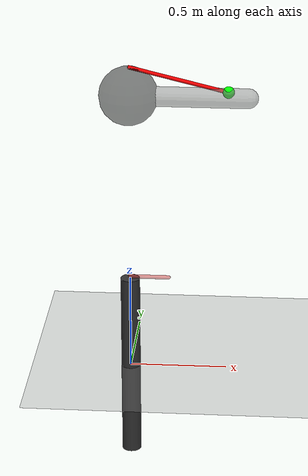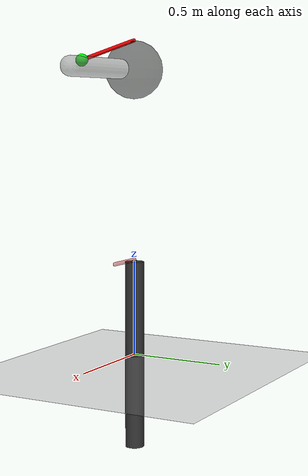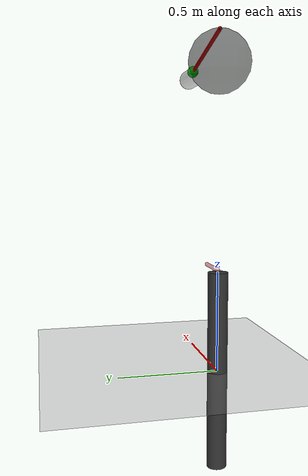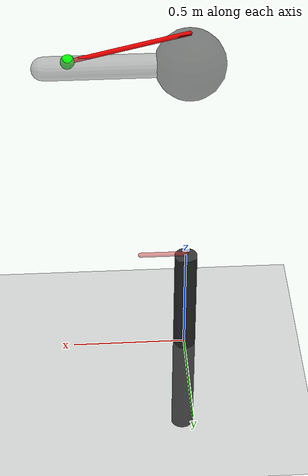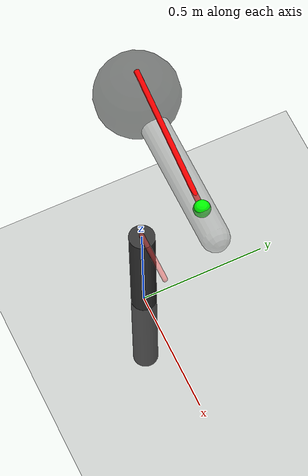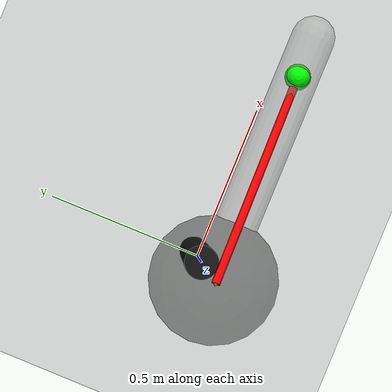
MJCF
<mujoco>
    <compiler angle="radian" meshdir="meshes" autolimits="true" />
    <asset>
        <mesh name="tetrahedron" vertex="0 0 0 1 0 0 0 1 0 0 0 1" />
        <texture type="skybox" file="../asset/desert.png"
            gridsize="3 4" gridlayout=".U..LFRB.D.." />
        <texture name="plane" type="2d" builtin="checker" rgb1=".1 .1 .1" rgb2=".9 .9 .9"
            width="512" height="512" mark="cross" markrgb=".8 .8 .8" />
        <material name="plane" reflectance="0.3" texture="plane" texrepeat="1 1" texuniform="true" />
    </asset>

    <worldbody>
        <geom name="floor" pos="0 0 0" size="0 0 .25" type="plane" material="plane"
            condim="3" />
        <light directional="true" ambient=".3 .3 .3" pos="30 30 30" dir="0 -.5 -1"
            diffuse=".5 .5 .5" specular=".5 .5 .5" />

        <body pos="0 0 0" mocap="true">
            <geom type="cylinder" mass="100" size="0.05 0.5" rgba=".2 .2 .2 1" />
            <body pos="0 0 0.51">
                <joint type="hinge" name="pivot" pos="0 0 0" axis="0 0 1" damping="0"
                    frictionloss="0.0" stiffness="0" />
                <geom type="capsule" mass="0.01" fromto="0 0 0 0.2 0 0" size="0.01"
                    rgba="0.8 0.2 0.2 0.5" />
            </body>
        </body>

        <body pos="0 0 1.5">
            <site name="ceiling" pos="0 0 .15" />
            <geom type="sphere" size="0.15" rgba="0 0 0 0.5"/>
            <body pos="0 0 0">
                <joint name="joint1" type="hinge" axis="0 1 0" range="-1.3 1.57"/>
                <site name="hook1" type="sphere" size="0.03" pos="0.5 0 0.03" rgba="0 1 0 1" />
                <geom type="capsule" size="0.05" fromto="0 0 0 .6 0 0" rgba=".5 .5 .5 .5"/>
            </body>
        </body>

    </worldbody>

    <tendon>
        <spatial name="A" springlength="0 0.5" stiffness="10" damping="10" width="0.01" rgba="1 0 0 1">
            <site site="ceiling" />
            <site site="hook1" />
        </spatial>
    </tendon>

    <actuator>
        <motor name="joint" joint="pivot"/>
        <muscle name="A" tendon="A" ctrlrange="-.5 .5"/>
    </actuator>

    <include file="key.xml"/>
</mujoco>

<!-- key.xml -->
<mujoco>
    <keyframe>
        <key qpos="0.04 0.04" />
        <key qpos="0.08 0.08" />
        <key qpos="0.12 0.12" />
        <key qpos="0.16 0.16" />
        <key qpos="0.20 0.20" />
        <key qpos="0.24 0.24" />
        <key qpos="0.28 0.28" />
        <key qpos="0.32 0.32" />
        <key qpos="0.36 0.36" />
        <key qpos="0.40 0.40" />
        <key qpos="0.44 0.44" />
        <key qpos="0.48 0.48" />
        <key qpos="0.52 0.52" />
        <key qpos="0.56 0.56" />
        <key qpos="0.60 0.60" />
        <key act="10" />
    </keyframe>
</mujoco>
